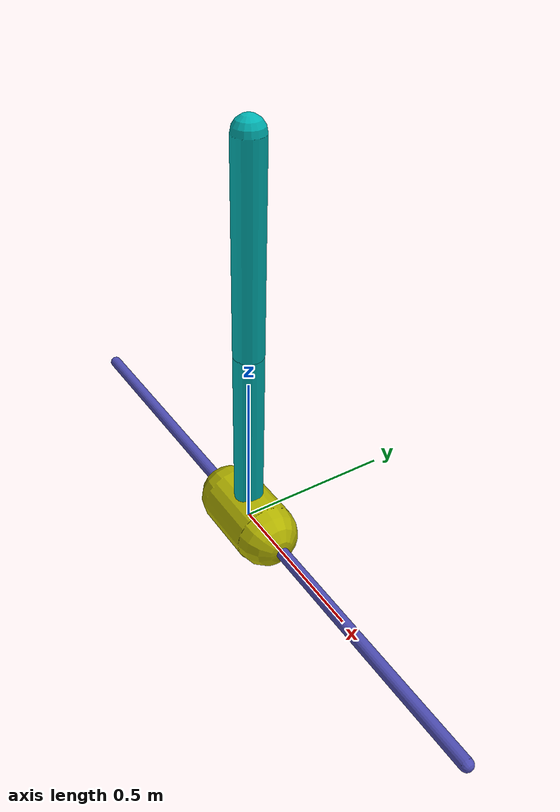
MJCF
<mujoco model="cartpole">
    <!-- Compile and physics options -->
    <compiler coordinate="local" inertiafromgeom="true" />
    <option gravity="1e-5 0 -9.81" integrator="RK4" timestep="0.01" />
    <size nstack="3000" />

    <!-- Optional: global visualization settings -->
    <visual>
        <!-- map: controls the near/far clip planes, plus optional fog -->
        <!-- quality: control shadow map resolution, etc. -->
        <quality shadowsize="2048" />
        <!-- headlight: the default light attached to the camera -->
        <headlight ambient="0.3 0.3 0.3" diffuse="0.7 0.7 0.7" specular="0.1 0.1 0.1" />
    </visual>

    <asset>
        <texture type="skybox" builtin="flat" rgb1="0 1 0" width="32"
            height="512" />
    </asset>

    <custom>
        <numeric data="2" name="frame_skip" />
    </custom>

    <default>
        <joint damping="0.05" />
        <geom contype="0" friction="1 0.1 0.1" rgba="0.7 0.7 0 1" />
    </default>

    <worldbody>

        <geom name="rail" pos="0 0 0" quat="0.707 0 0.707 0" rgba="0.3 0.3 0.7 1" size="0.02 1"
            type="capsule" />

        <body name="cart" pos="0 0 0">
            <joint axis="1 0 0" limited="true" margin="0.01" name="slider" pos="0 0 0" range="-1 1"
                type="slide" />
            <geom name="cart" pos="0 0 0" quat="0.707 0 0.707 0" size="0.1 0.1" type="capsule" />

            <body name="pole" pos="0 0 0">
                <joint axis="0 1 0" name="hinge" pos="0 0 0" type="hinge" />
                <geom fromto="0 0 0 0 0 0.6" name="cpole" rgba="0 0.7 0.7 1" size="0.045 0.3"
                    type="capsule" />
                <site name="pole_tip" pos="0 0 0.6" size="0.01 0.01" rgba="1 0 0 1" />
                <body name="pole2" pos="0 0 0.6">
                    <joint axis="0 1 0" name="hinge2" pos="0 0 0" type="hinge" />
                    <geom fromto="0 0 0 0 0 0.6" name="cpole2" rgba="0 0.7 0.7 1" size="0.045 0.3"
                        type="capsule" />
                    <site name="pole2_tip" pos="0 0 0.6" size="0.01 0.01" />
                </body>
            </body>
        </body>
    </worldbody>

    <actuator>
        <motor ctrllimited="true" ctrlrange="-1 1" gear="500" joint="slider" name="slide" />
    </actuator>
</mujoco>
